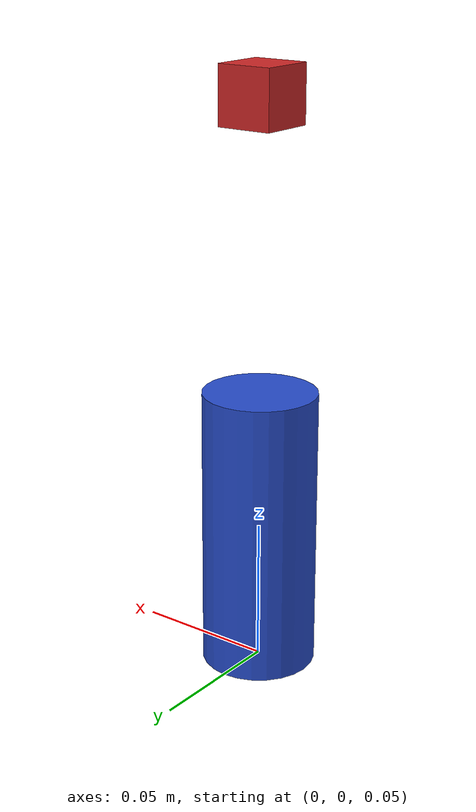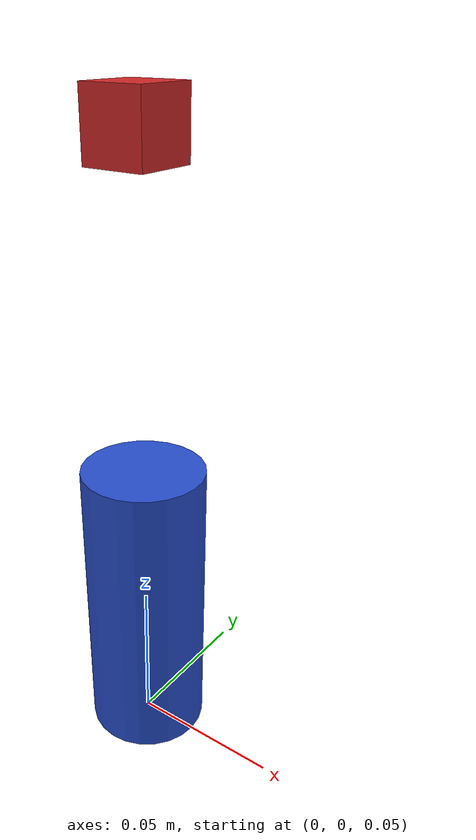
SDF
<?xml version="1.0" ?>
<sdf version='1.4'>
    <model name='plunger_ft_sensor'>
        <pose>0 0 0.10 0 0 0</pose>
        <static>false</static>

        <link name='plunger_link'>
          <inertial>
              <mass>1</mass>
              <inertia>
                  <ixx>0.145833</ixx>
                  <ixy>0</ixy>
                  <ixz>0</ixz>
                  <iyy>0.145833</iyy>
                  <iyz>0</iyz>
                  <izz>0.125</izz>
              </inertia>
          </inertial>
          <collision name='plunger_collision'>
              <geometry>
                  <cylinder>
                        <radius>0.02</radius>
                        <length>0.10</length>
                  </cylinder>
              </geometry>
              <max_contacts>50</max_contacts>
              <surface>
                <contact>
                  <ode/>
                </contact>
                <bounce/>
                <friction>
                  <ode/>
                </friction>
              </surface>
          </collision>
          <visual name='plunger_visual'>
              <geometry>
                  <cylinder>
                      <radius>0.02</radius>
                      <length>0.10</length>
                  </cylinder>
              </geometry>
              <material>
                <script>
                  <uri>file://media/materials/scripts/gazebo.material</uri>
                  <name>Gazebo/Blue</name>
                </script>
              </material>
          </visual>
          <self_collide>1</self_collide>
          <kinematic>0</kinematic>
          <gravity>0</gravity>
        </link>

        <link name="fake_link">
        <pose>0 0 0.15 0 0 0</pose>
        <inertial>
          <pose>0 0 0.0 0 0 0</pose>
          <inertia>
            <ixx>0.100000</ixx>
            <ixy>0.000000</ixy>
            <ixz>0.000000</ixz>
            <iyy>0.100000</iyy>
            <iyz>0.000000</iyz>
            <izz>0.100000</izz>
          </inertia>
          <mass>1.0</mass>
        </inertial>
        <visual name="fake_link_visual">
          <pose>0 0 0.0 0 0 0</pose>
          <geometry>
            <box>
              <size>0.02 0.02 0.02</size>
            </box>
          </geometry>
          <material>
                <script>
                  <uri>file://media/materials/scripts/gazebo.material</uri>
                  <name>Gazebo/Red</name>
                </script>
          </material>
        </visual>
        <collision name="fake_link_collision">
          <pose>0 0 0.0 0 0 0</pose>
          <geometry>
            <box>
              <size>0.02 0.02 0.02</size>
            </box>
          </geometry>
        </collision>
        <self_collide>1</self_collide>
        <kinematic>0</kinematic>
        <gravity>0</gravity>
        </link>

        <joint name="fixed_joint" type="prismatic">
          <parent>world</parent>
          <child>fake_link</child>
          <axis>
              <xyz>0 0 1</xyz>
              <limit>
                  <lower>0.0</lower>
                  <upper>0.0</upper>
              </limit>
              <use_parent_model_frame>1</use_parent_model_frame>
          </axis>
        </joint>

        <joint name='plunger_joint' type='prismatic'>
          <parent>fake_link</parent>
          <child>plunger_link</child>
          <axis>
              <xyz>0 0 1</xyz>
              <limit>
                  <lower>-0.5</lower>
                  <upper>1.0</upper>
              </limit>
              <use_parent_model_frame>0</use_parent_model_frame>
          </axis>
          <physics>
             <provide_feedback>1</provide_feedback>
             <ode>
                <implicit_spring_damper>0</implicit_spring_damper>
             </ode>
          </physics>
          <sensor name='plunger_sensor' type='force_torque'>
          </sensor>
        </joint>

        <plugin name='Plunger' filename='libPlunger.so'>
            <file_name>plunger</file_name>
            <rosNamespace>skinsim</rosNamespace>
            <updateRate>0</updateRate>
            <Kp>0.05</Kp>
            <Kd>0.0</Kd>
            <Kv>0.0</Kv>
            <JointPgain>0.5</JointPgain>
            <JointIgain>0.01</JointIgain>
            <JointDgain>0.0</JointDgain>
        </plugin>

    </model>
</sdf>
